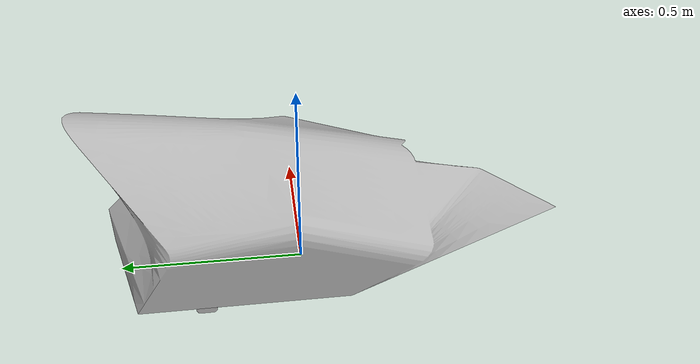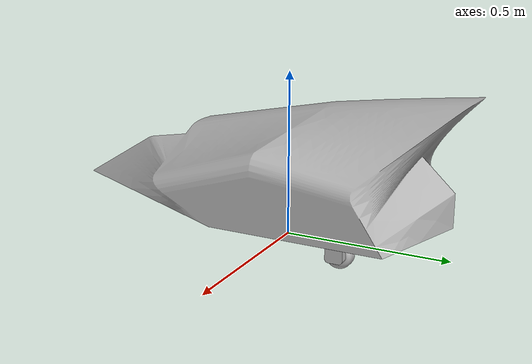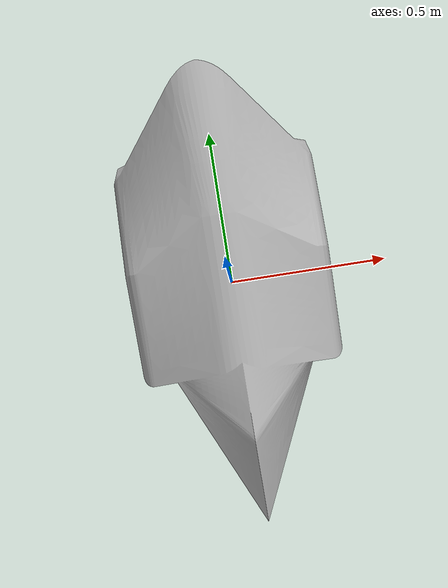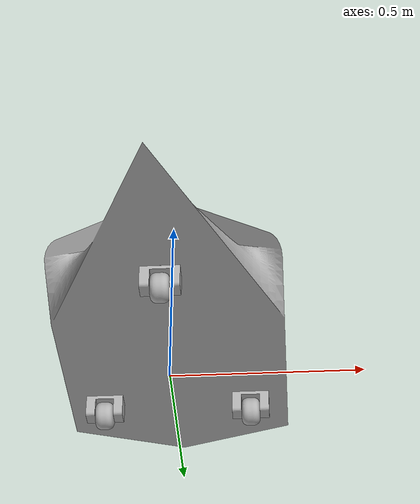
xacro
<?xml version="1.0" ?>
<robot name="tricycle" xmlns:xacro="http://www.ros.org/wiki/xacro">

<xacro:include filename="$(find tricycle_description)/urdf/materials.xacro" />
<xacro:include filename="$(find tricycle_description)/urdf/tricycle.trans" />
<xacro:include filename="$(find tricycle_description)/urdf/tricycle.gazebo" />
<link name="base_link">
  <inertial>
    <origin xyz="1.993345934051113e-08 0.05735336805919026 0.22395063421700434" rpy="0 0 0"/>
    <mass value="873.972072410784"/>
    <inertia ixx="55.976594" iyy="25.061125" izz="69.219522" ixy="9e-06" iyz="-5.006304" ixz="1e-06"/>
  </inertial>
  <visual>
    <origin xyz="0 0 0" rpy="0 0 0"/>
    <geometry>
      <mesh filename="file://$(find tricycle_description)/meshes/base_link.stl" scale="0.001 0.001 0.001"/>
    </geometry>
    <material name="silver"/>
  </visual>
  <collision>
    <origin xyz="0 0 0" rpy="0 0 0"/>
    <geometry>
      <mesh filename="file://$(find tricycle_description)/meshes/base_link.stl" scale="0.001 0.001 0.001"/>
    </geometry>
  </collision>
</link>

<link name="f_link_1">
  <inertial>
    <origin xyz="0.00010671579673111687 0.00024063964656861891 -0.059876870196363396" rpy="0 0 0"/>
    <mass value="2.2508832153138454"/>
    <inertia ixx="0.002498" iyy="0.003977" izz="0.002281" ixy="-0.0" iyz="1e-05" ixz="4e-06"/>
  </inertial>
  <visual>
    <origin xyz="-0.0 0.3 -0.15" rpy="0 0 0"/>
    <geometry>
      <mesh filename="file://$(find tricycle_description)/meshes/f_link_1.stl" scale="0.001 0.001 0.001"/>
    </geometry>
    <material name="silver"/>
  </visual>
  <collision>
    <origin xyz="-0.0 0.3 -0.15" rpy="0 0 0"/>
    <geometry>
      <mesh filename="file://$(find tricycle_description)/meshes/f_link_1.stl" scale="0.001 0.001 0.001"/>
    </geometry>
  </collision>
</link>

<link name="r_link_1">
  <inertial>
    <origin xyz="5.551115123125783e-17 5.551115123125783e-17 -0.05689315337390689" rpy="0 0 0"/>
    <mass value="2.461461267480099"/>
    <inertia ixx="0.00286" iyy="0.004339" izz="0.002449" ixy="0.0" iyz="-0.0" ixz="0.0"/>
  </inertial>
  <visual>
    <origin xyz="-0.2 -0.25 -0.15" rpy="0 0 0"/>
    <geometry>
      <mesh filename="file://$(find tricycle_description)/meshes/r_link_1.stl" scale="0.001 0.001 0.001"/>
    </geometry>
    <material name="silver"/>
  </visual>
  <collision>
    <origin xyz="-0.2 -0.25 -0.15" rpy="0 0 0"/>
    <geometry>
      <mesh filename="file://$(find tricycle_description)/meshes/r_link_1.stl" scale="0.001 0.001 0.001"/>
    </geometry>
  </collision>
</link>

<link name="r_link_2">
  <inertial>
    <origin xyz="0.0 5.551115123125783e-17 -0.05689315337390684" rpy="0 0 0"/>
    <mass value="2.461461267480099"/>
    <inertia ixx="0.00286" iyy="0.004339" izz="0.002449" ixy="0.0" iyz="-0.0" ixz="0.0"/>
  </inertial>
  <visual>
    <origin xyz="0.2 -0.25 -0.15" rpy="0 0 0"/>
    <geometry>
      <mesh filename="file://$(find tricycle_description)/meshes/r_link_2.stl" scale="0.001 0.001 0.001"/>
    </geometry>
    <material name="silver"/>
  </visual>
  <collision>
    <origin xyz="0.2 -0.25 -0.15" rpy="0 0 0"/>
    <geometry>
      <mesh filename="file://$(find tricycle_description)/meshes/r_link_2.stl" scale="0.001 0.001 0.001"/>
    </geometry>
  </collision>
</link>

<link name="wheel_link_1">
  <inertial>
    <origin xyz="0.02500027737313759 -7.008023028554078e-08 6.036837696399289e-16" rpy="0 0 0"/>
    <mass value="1.4001768616333023"/>
    <inertia ixx="0.000968" iyy="0.000725" izz="0.000725" ixy="0.0" iyz="-0.0" ixz="-0.0"/>
  </inertial>
  <visual>
    <origin xyz="0.024838 0.299634 -0.05" rpy="0 0 0"/>
    <geometry>
      <mesh filename="file://$(find tricycle_description)/meshes/wheel_link_1.stl" scale="0.001 0.001 0.001"/>
    </geometry>
    <material name="silver"/>
  </visual>
  <collision>
    <origin xyz="0.024838 0.299634 -0.05" rpy="0 0 0"/>
    <geometry>
      <mesh filename="file://$(find tricycle_description)/meshes/wheel_link_1.stl" scale="0.001 0.001 0.001"/>
    </geometry>
  </collision>
</link>

<link name="wheel_link_3">
  <inertial>
    <origin xyz="-0.024999999999659295 1.2491128131841833e-09 6.036837696399289e-16" rpy="0 0 0"/>
    <mass value="1.4001768616333023"/>
    <inertia ixx="0.000968" iyy="0.000725" izz="0.000725" ixy="0.0" iyz="-0.0" ixz="0.0"/>
  </inertial>
  <visual>
    <origin xyz="-0.225 -0.25 -0.05" rpy="0 0 0"/>
    <geometry>
      <mesh filename="file://$(find tricycle_description)/meshes/wheel_link_3.stl" scale="0.001 0.001 0.001"/>
    </geometry>
    <material name="silver"/>
  </visual>
  <collision>
    <origin xyz="-0.225 -0.25 -0.05" rpy="0 0 0"/>
    <geometry>
      <mesh filename="file://$(find tricycle_description)/meshes/wheel_link_3.stl" scale="0.001 0.001 0.001"/>
    </geometry>
  </collision>
</link>

<link name="wheel_link_2">
  <inertial>
    <origin xyz="-0.024999999999659267 1.2491126466507296e-09 6.38378239159465e-16" rpy="0 0 0"/>
    <mass value="1.4001768616333023"/>
    <inertia ixx="0.000968" iyy="0.000725" izz="0.000725" ixy="0.0" iyz="-0.0" ixz="-0.0"/>
  </inertial>
  <visual>
    <origin xyz="0.175 -0.25 -0.05" rpy="0 0 0"/>
    <geometry>
      <mesh filename="file://$(find tricycle_description)/meshes/wheel_link_2.stl" scale="0.001 0.001 0.001"/>
    </geometry>
    <material name="silver"/>
  </visual>
  <collision>
    <origin xyz="0.175 -0.25 -0.05" rpy="0 0 0"/>
    <geometry>
      <mesh filename="file://$(find tricycle_description)/meshes/wheel_link_2.stl" scale="0.001 0.001 0.001"/>
    </geometry>
  </collision>
</link>

<joint name="j_handle" type="continuous">
  <origin xyz="0.0 -0.3 0.15" rpy="0 0 0"/>
  <parent link="base_link"/>
  <child link="f_link_1"/>
  <axis xyz="0.0 0.0 -1.0"/>
</joint>

<joint name="l" type="fixed">
  <origin xyz="0.2 0.25 0.15" rpy="0 0 0"/>
  <parent link="base_link"/>
  <child link="r_link_1"/>
</joint>

<joint name="r" type="fixed">
  <origin xyz="-0.2 0.25 0.15" rpy="0 0 0"/>
  <parent link="base_link"/>
  <child link="r_link_2"/>
</joint>

<joint name="j_f" type="continuous">
  <origin xyz="-0.024838 0.000366 -0.1" rpy="0 0 0"/>
  <parent link="f_link_1"/>
  <child link="wheel_link_1"/>
  <axis xyz="-1.0 0.0 -0.0"/>
</joint>

<joint name="j_rl" type="continuous">
  <origin xyz="0.025 0.0 -0.1" rpy="0 0 0"/>
  <parent link="r_link_1"/>
  <child link="wheel_link_3"/>
  <axis xyz="-1.0 0.0 0.0"/>
</joint>

<joint name="j_rr" type="continuous">
  <origin xyz="0.025 0.0 -0.1" rpy="0 0 0"/>
  <parent link="r_link_2"/>
  <child link="wheel_link_2"/>
  <axis xyz="-1.0 0.0 0.0"/>
</joint>

</robot>

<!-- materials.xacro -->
<robot name="tricycle" xmlns:xacro="http://www.ros.org/wiki/xacro" >

<material name="silver">
  <color rgba="0.700 0.700 0.700 1.000"/>
</material>

</robot>

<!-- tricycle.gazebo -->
<robot name="tricycle" xmlns:xacro="http://www.ros.org/wiki/xacro" >

<xacro:property name="body_color" value="Gazebo/Silver" />

<gazebo>
  <plugin name="control" filename="libgazebo_ros_control.so"/>
</gazebo>
<gazebo reference="base_link">
  <material>${body_color}</material>
  <mu1>0.2</mu1>
  <mu2>0.2</mu2>
  <self_collide>true</self_collide>
  <gravity>true</gravity>
</gazebo>

<gazebo reference="f_link_1">
  <material>${body_color}</material>
  <mu1>0.2</mu1>
  <mu2>0.2</mu2>
  <self_collide>true</self_collide>
</gazebo>

<gazebo reference="r_link_1">
  <material>${body_color}</material>
  <mu1>0.2</mu1>
  <mu2>0.2</mu2>
  <self_collide>true</self_collide>
</gazebo>

<gazebo reference="r_link_2">
  <material>${body_color}</material>
  <mu1>0.2</mu1>
  <mu2>0.2</mu2>
  <self_collide>true</self_collide>
</gazebo>

<gazebo reference="wheel_link_1">
  <material>${body_color}</material>
  <mu1>0.2</mu1>
  <mu2>0.2</mu2>
  <self_collide>true</self_collide>
</gazebo>

<gazebo reference="wheel_link_3">
  <material>${body_color}</material>
  <mu1>0.2</mu1>
  <mu2>0.2</mu2>
  <self_collide>true</self_collide>
</gazebo>

<gazebo reference="wheel_link_2">
  <material>${body_color}</material>
  <mu1>0.2</mu1>
  <mu2>0.2</mu2>
  <self_collide>true</self_collide>
</gazebo>

</robot>
